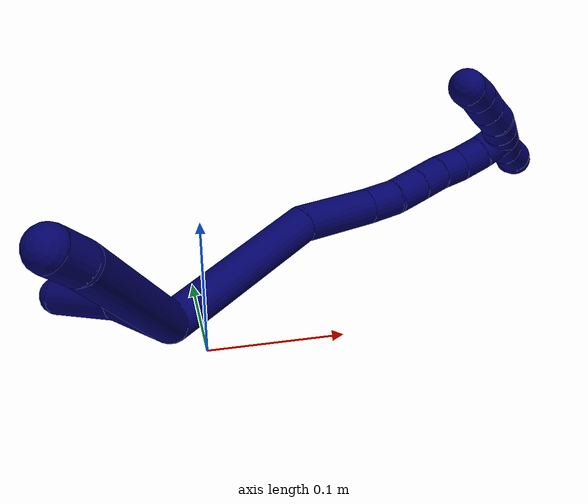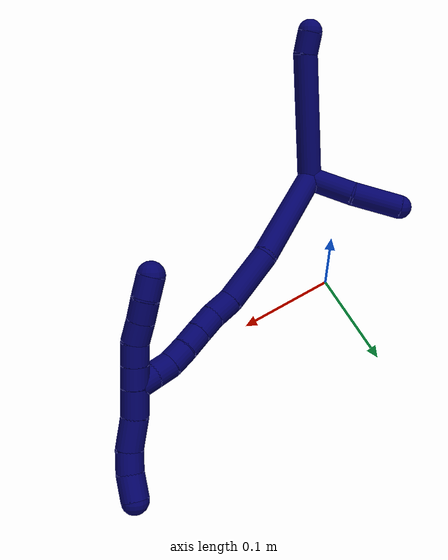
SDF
<sdf version="1.7">
 <world name="default">
  <model name="photoneo_s_sensor">
   <static>1</static>
   <pose>0 0 2 1.57079 1.57079 3.14159</pose>
   <link name="link">
    <inertial><mass>0.1</mass></inertial>
    <sensor name="sensor" type="depth">
     <update_rate>30</update_rate>
     <camera>
      <horizontal_fov>1.22</horizontal_fov>
      <image><width>1920</width><height>1200</height><format>B8G8R8</format></image>
      <clip><near>0.1</near><far>4</far></clip>
      <depth_camera><output>points</output></depth_camera>
     </camera>
     <plugin name="camera_plugin" filename="libgazebo_ros_depth_camera.so">
      <baseline>0.2</baseline>
      <alwaysOn>1</alwaysOn>
      <updateRate>0.0</updateRate>
      <cameraName>camera_ir</cameraName>
      <imageTopicName>/camera/color/image_raw</imageTopicName>
      <cameraInfoTopicName>/camera/color/camera_info</cameraInfoTopicName>
      <depthImageTopicName>/camera/depth/image_raw</depthImageTopicName>
      <depthImageCameraInfoTopicName>/camera/depth/camera_info</depthImageCameraInfoTopicName>
      <pointCloudTopicName>/camera/depth/points</pointCloudTopicName>
      <frameName>fr_optical</frameName>
      <pointCloudCutoff>0.1</pointCloudCutoff>
      <pointCloudCutoffMax>2.0</pointCloudCutoffMax>
      <distortionK1>0</distortionK1>
      <distortionK2>0</distortionK2>
      <distortionK3>0</distortionK3>
      <distortionT1>0</distortionT1>
      <distortionT2>0</distortionT2>
      <CxPrime>0</CxPrime>
      <Cx>0</Cx>
      <Cy>0</Cy>
      <focalLength>0</focalLength>
      <hackBaseline>0</hackBaseline>
     </plugin>
    </sensor>
   </link>
  </model>
  <model name="bin">
   <static>1</static>
   <link name="bottom">
    <collision name="collision-bottom">
     <pose>0 0 -0.01 0 -0 0</pose>
     <geometry><box><size>0.8 0.6 0.02</size></box></geometry>
     <surface>
      <friction><ode><mu>100</mu><mu2>100</mu2></ode></friction>
      <contact><collide_bitmask>65535</collide_bitmask></contact>
     </surface>
    </collision>
   </link>
   <link name="west_wall">
    <collision name="collision-west_wall">
     <pose>-0.41 0 0.1 0 -0 0</pose>
     <geometry><box><size>0.02 0.6 0.2</size></box></geometry>
     <surface>
      <friction><ode><mu>100</mu><mu2>100</mu2></ode></friction>
      <contact><collide_bitmask>65535</collide_bitmask></contact>
     </surface>
    </collision>
   </link>
   <link name="east_wall">
    <collision name="collision-east_wall">
     <pose>0.41 0 0.1 0 -0 0</pose>
     <geometry><box><size>0.02 0.6 0.2</size></box></geometry>
     <surface>
      <friction><ode><mu>100</mu><mu2>100</mu2></ode></friction>
      <contact><collide_bitmask>65535</collide_bitmask></contact>
     </surface>
    </collision>
   </link>
   <link name="south_wall">
    <collision name="collision-south_wall">
     <pose>0 -0.31 0.1 0 -0 0</pose>
     <geometry><box><size>0.8 0.02 0.2</size></box></geometry>
     <surface>
      <friction><ode><mu>100</mu><mu2>100</mu2></ode></friction>
      <contact><collide_bitmask>65535</collide_bitmask></contact>
     </surface>
    </collision>
   </link>
   <link name="north_wall">
    <collision name="collision-north_wall">
     <pose>0 0.31 0.1 0 -0 0</pose>
     <geometry><box><size>0.8 0.02 0.2</size></box></geometry>
     <surface>
      <friction><ode><mu>100</mu><mu2>100</mu2></ode></friction>
      <contact><collide_bitmask>65535</collide_bitmask></contact>
     </surface>
    </collision>
   </link>
  </model>
  <model name="7">
   <static>0</static>
   <link name="7">
    <collision name="collision-cylinder-e_1_2_8">
     <pose>0.003729 0.00787 0.06325 -0.123794 0.058442 -0.003623</pose>
     <geometry><cylinder><radius>0.0125</radius><length>0.127693</length></cylinder></geometry>
     <surface>
      <friction><ode><mu>1.16</mu><mu2>1.16</mu2><slip1>0</slip1><slip2>0</slip2></ode></friction>
      <contact><ode><kp>1e+06</kp><kd>1</kd><max_vel>0</max_vel><min_depth>0.001</min_depth></ode></contact>
     </surface>
    </collision>
    <visual name="visual-cylinder-e_1_2_8">
     <pose>0.003729 0.00787 0.06325 -0.123794 0.058442 -0.003623</pose>
     <geometry><cylinder><radius>0.0125</radius><length>0.127693</length></cylinder></geometry>
     <material><ambient>0.003922 0 0.403922 1</ambient></material>
    </visual>
    <collision name="collision-cylinder-e_2_8_6">
     <pose>0.005365 0.0171 0.13737 -0.124409 -0.188824 0.011796</pose>
     <geometry><cylinder><radius>0.0125</radius><length>0.022307</length></cylinder></geometry>
     <surface>
      <friction><ode><mu>1.16</mu><mu2>1.16</mu2><slip1>0</slip1><slip2>0</slip2></ode></friction>
      <contact><ode><kp>1e+06</kp><kd>1</kd><max_vel>0</max_vel><min_depth>0.001</min_depth></ode></contact>
     </surface>
    </collision>
    <visual name="visual-cylinder-e_2_8_6">
     <pose>0.005365 0.0171 0.13737 -0.124409 -0.188824 0.011796</pose>
     <geometry><cylinder><radius>0.0125</radius><length>0.022307</length></cylinder></geometry>
     <material><ambient>0.003922 0 0.403922 1</ambient></material>
    </visual>
    <collision name="collision-cylinder-e_1_2_9">
     <pose>-0.021893 0.006597 -0.007746 -2.43616 -1.13577 2.09495</pose>
     <geometry><cylinder><radius>0.0125</radius><length>0.048284</length></cylinder></geometry>
     <surface>
      <friction><ode><mu>1.16</mu><mu2>1.16</mu2><slip1>0</slip1><slip2>0</slip2></ode></friction>
      <contact><ode><kp>1e+06</kp><kd>1</kd><max_vel>0</max_vel><min_depth>0.001</min_depth></ode></contact>
     </surface>
    </collision>
    <visual name="visual-cylinder-e_1_2_9">
     <pose>-0.021893 0.006597 -0.007746 -2.43616 -1.13577 2.09495</pose>
     <geometry><cylinder><radius>0.0125</radius><length>0.048284</length></cylinder></geometry>
     <material><ambient>0.003922 0 0.403922 1</ambient></material>
    </visual>
    <collision name="collision-cylinder-e_2_9_5">
     <pose>-0.06864 0.014641 -0.02248 -2.9373 -1.29116 2.87109</pose>
     <geometry><cylinder><radius>0.0125</radius><length>0.051716</length></cylinder></geometry>
     <surface>
      <friction><ode><mu>1.16</mu><mu2>1.16</mu2><slip1>0</slip1><slip2>0</slip2></ode></friction>
      <contact><ode><kp>1e+06</kp><kd>1</kd><max_vel>0</max_vel><min_depth>0.001</min_depth></ode></contact>
     </surface>
    </collision>
    <visual name="visual-cylinder-e_2_9_5">
     <pose>-0.06864 0.014641 -0.02248 -2.9373 -1.29116 2.87109</pose>
     <geometry><cylinder><radius>0.0125</radius><length>0.051716</length></cylinder></geometry>
     <material><ambient>0.003922 0 0.403922 1</ambient></material>
    </visual>
    <collision name="collision-cylinder-e_1_2_10">
     <pose>0.027549 0.037768 -0.035484 -2.32503 0.488614 -1.04557</pose>
     <geometry><cylinder><radius>0.0125</radius><length>0.117381</length></cylinder></geometry>
     <surface>
      <friction><ode><mu>1.16</mu><mu2>1.16</mu2><slip1>0</slip1><slip2>0</slip2></ode></friction>
      <contact><ode><kp>1e+06</kp><kd>1</kd><max_vel>0</max_vel><min_depth>0.001</min_depth></ode></contact>
     </surface>
    </collision>
    <visual name="visual-cylinder-e_1_2_10">
     <pose>0.027549 0.037768 -0.035484 -2.32503 0.488614 -1.04557</pose>
     <geometry><cylinder><radius>0.0125</radius><length>0.117381</length></cylinder></geometry>
     <material><ambient>0.003922 0 0.403922 1</ambient></material>
    </visual>
    <collision name="collision-cylinder-e_2_10_11">
     <pose>0.072217 0.086094 -0.090362 -2.64307 0.659481 -1.86255</pose>
     <geometry><cylinder><radius>0.0125</radius><length>0.055879</length></cylinder></geometry>
     <surface>
      <friction><ode><mu>1.16</mu><mu2>1.16</mu2><slip1>0</slip1><slip2>0</slip2></ode></friction>
      <contact><ode><kp>1e+06</kp><kd>1</kd><max_vel>0</max_vel><min_depth>0.001</min_depth></ode></contact>
     </surface>
    </collision>
    <visual name="visual-cylinder-e_2_10_11">
     <pose>0.072217 0.086094 -0.090362 -2.64307 0.659481 -1.86255</pose>
     <geometry><cylinder><radius>0.0125</radius><length>0.055879</length></cylinder></geometry>
     <material><ambient>0.003922 0 0.403922 1</ambient></material>
    </visual>
    <collision name="collision-cylinder-e_3_11_12">
     <pose>0.097947 0.101644 -0.115969 -2.46468 0.82399 -1.78544</pose>
     <geometry><cylinder><radius>0.0125</radius><length>0.023468</length></cylinder></geometry>
     <surface>
      <friction><ode><mu>1.16</mu><mu2>1.16</mu2><slip1>0</slip1><slip2>0</slip2></ode></friction>
      <contact><ode><kp>1e+06</kp><kd>1</kd><max_vel>0</max_vel><min_depth>0.001</min_depth></ode></contact>
     </surface>
    </collision>
    <visual name="visual-cylinder-e_3_11_12">
     <pose>0.097947 0.101644 -0.115969 -2.46468 0.82399 -1.78544</pose>
     <geometry><cylinder><radius>0.0125</radius><length>0.023468</length></cylinder></geometry>
     <material><ambient>0.003922 0 0.403922 1</ambient></material>
    </visual>
    <collision name="collision-cylinder-e_4_12_13">
     <pose>0.113464 0.112826 -0.128465 -2.3638 0.664304 -1.39941</pose>
     <geometry><cylinder><radius>0.0125</radius><length>0.022402</length></cylinder></geometry>
     <surface>
      <friction><ode><mu>1.16</mu><mu2>1.16</mu2><slip1>0</slip1><slip2>0</slip2></ode></friction>
      <contact><ode><kp>1e+06</kp><kd>1</kd><max_vel>0</max_vel><min_depth>0.001</min_depth></ode></contact>
     </surface>
    </collision>
    <visual name="visual-cylinder-e_4_12_13">
     <pose>0.113464 0.112826 -0.128465 -2.3638 0.664304 -1.39941</pose>
     <geometry><cylinder><radius>0.0125</radius><length>0.022402</length></cylinder></geometry>
     <material><ambient>0.003922 0 0.403922 1</ambient></material>
    </visual>
    <collision name="collision-cylinder-e_5_13_14">
     <pose>0.12653 0.124737 -0.140548 -2.36278 0.647409 -1.37075</pose>
     <geometry><cylinder><radius>0.0125</radius><length>0.02043</length></cylinder></geometry>
     <surface>
      <friction><ode><mu>1.16</mu><mu2>1.16</mu2><slip1>0</slip1><slip2>0</slip2></ode></friction>
      <contact><ode><kp>1e+06</kp><kd>1</kd><max_vel>0</max_vel><min_depth>0.001</min_depth></ode></contact>
     </surface>
    </collision>
    <visual name="visual-cylinder-e_5_13_14">
     <pose>0.12653 0.124737 -0.140548 -2.36278 0.647409 -1.37075</pose>
     <geometry><cylinder><radius>0.0125</radius><length>0.02043</length></cylinder></geometry>
     <material><ambient>0.003922 0 0.403922 1</ambient></material>
    </visual>
    <collision name="collision-cylinder-e_6_14_15">
     <pose>0.139367 0.135267 -0.152151 -2.44989 0.725023 -1.622</pose>
     <geometry><cylinder><radius>0.0125</radius><length>0.020135</length></cylinder></geometry>
     <surface>
      <friction><ode><mu>1.16</mu><mu2>1.16</mu2><slip1>0</slip1><slip2>0</slip2></ode></friction>
      <contact><ode><kp>1e+06</kp><kd>1</kd><max_vel>0</max_vel><min_depth>0.001</min_depth></ode></contact>
     </surface>
    </collision>
    <visual name="visual-cylinder-e_6_14_15">
     <pose>0.139367 0.135267 -0.152151 -2.44989 0.725023 -1.622</pose>
     <geometry><cylinder><radius>0.0125</radius><length>0.020135</length></cylinder></geometry>
     <material><ambient>0.003922 0 0.403922 1</ambient></material>
    </visual>
    <collision name="collision-cylinder-e_7_15_16">
     <pose>0.153639 0.145744 -0.161264 -2.09925 0.857977 -1.34545</pose>
     <geometry><cylinder><radius>0.0125</radius><length>0.020079</length></cylinder></geometry>
     <surface>
      <friction><ode><mu>1.16</mu><mu2>1.16</mu2><slip1>0</slip1><slip2>0</slip2></ode></friction>
      <contact><ode><kp>1e+06</kp><kd>1</kd><max_vel>0</max_vel><min_depth>0.001</min_depth></ode></contact>
     </surface>
    </collision>
    <visual name="visual-cylinder-e_7_15_16">
     <pose>0.153639 0.145744 -0.161264 -2.09925 0.857977 -1.34545</pose>
     <geometry><cylinder><radius>0.0125</radius><length>0.020079</length></cylinder></geometry>
     <material><ambient>0.003922 0 0.403922 1</ambient></material>
    </visual>
    <collision name="collision-cylinder-e_8_16_1">
     <pose>0.168442 0.15798 -0.167259 -1.95886 0.79336 -1.11543</pose>
     <geometry><cylinder><radius>0.0125</radius><length>0.020227</length></cylinder></geometry>
     <surface>
      <friction><ode><mu>1.16</mu><mu2>1.16</mu2><slip1>0</slip1><slip2>0</slip2></ode></friction>
      <contact><ode><kp>1e+06</kp><kd>1</kd><max_vel>0</max_vel><min_depth>0.001</min_depth></ode></contact>
     </surface>
    </collision>
    <visual name="visual-cylinder-e_8_16_1">
     <pose>0.168442 0.15798 -0.167259 -1.95886 0.79336 -1.11543</pose>
     <geometry><cylinder><radius>0.0125</radius><length>0.020227</length></cylinder></geometry>
     <material><ambient>0.003922 0 0.403922 1</ambient></material>
    </visual>
    <collision name="collision-cylinder-e_1_1_17">
     <pose>0.175964 0.164165 -0.183087 3.11254 0.023889 1.37623</pose>
     <geometry><cylinder><radius>0.0125</radius><length>0.026305</length></cylinder></geometry>
     <surface>
      <friction><ode><mu>1.16</mu><mu2>1.16</mu2><slip1>0</slip1><slip2>0</slip2></ode></friction>
      <contact><ode><kp>1e+06</kp><kd>1</kd><max_vel>0</max_vel><min_depth>0.001</min_depth></ode></contact>
     </surface>
    </collision>
    <visual name="visual-cylinder-e_1_1_17">
     <pose>0.175964 0.164165 -0.183087 3.11254 0.023889 1.37623</pose>
     <geometry><cylinder><radius>0.0125</radius><length>0.026305</length></cylinder></geometry>
     <material><ambient>0.003922 0 0.403922 1</ambient></material>
    </visual>
    <collision name="collision-cylinder-e_2_17_18">
     <pose>0.17885 0.164686 -0.210753 -3.0795 0.174961 -2.4609</pose>
     <geometry><cylinder><radius>0.0125</radius><length>0.029554</length></cylinder></geometry>
     <surface>
      <friction><ode><mu>1.16</mu><mu2>1.16</mu2><slip1>0</slip1><slip2>0</slip2></ode></friction>
      <contact><ode><kp>1e+06</kp><kd>1</kd><max_vel>0</max_vel><min_depth>0.001</min_depth></ode></contact>
     </surface>
    </collision>
    <visual name="visual-cylinder-e_2_17_18">
     <pose>0.17885 0.164686 -0.210753 -3.0795 0.174961 -2.4609</pose>
     <geometry><cylinder><radius>0.0125</radius><length>0.029554</length></cylinder></geometry>
     <material><ambient>0.003922 0 0.403922 1</ambient></material>
    </visual>
    <collision name="collision-cylinder-e_3_18_19">
     <pose>0.181263 0.167091 -0.235318 -2.99309 -0.015675 0.209949</pose>
     <geometry><cylinder><radius>0.0125</radius><length>0.020309</length></cylinder></geometry>
     <surface>
      <friction><ode><mu>1.16</mu><mu2>1.16</mu2><slip1>0</slip1><slip2>0</slip2></ode></friction>
      <contact><ode><kp>1e+06</kp><kd>1</kd><max_vel>0</max_vel><min_depth>0.001</min_depth></ode></contact>
     </surface>
    </collision>
    <visual name="visual-cylinder-e_3_18_19">
     <pose>0.181263 0.167091 -0.235318 -2.99309 -0.015675 0.209949</pose>
     <geometry><cylinder><radius>0.0125</radius><length>0.020309</length></cylinder></geometry>
     <material><ambient>0.003922 0 0.403922 1</ambient></material>
    </visual>
    <collision name="collision-cylinder-e_4_19_4">
     <pose>0.178929 0.171888 -0.256603 -2.85657 -0.183601 1.14089</pose>
     <geometry><cylinder><radius>0.0125</radius><length>0.023832</length></cylinder></geometry>
     <surface>
      <friction><ode><mu>1.16</mu><mu2>1.16</mu2><slip1>0</slip1><slip2>0</slip2></ode></friction>
      <contact><ode><kp>1e+06</kp><kd>1</kd><max_vel>0</max_vel><min_depth>0.001</min_depth></ode></contact>
     </surface>
    </collision>
    <visual name="visual-cylinder-e_4_19_4">
     <pose>0.178929 0.171888 -0.256603 -2.85657 -0.183601 1.14089</pose>
     <geometry><cylinder><radius>0.0125</radius><length>0.023832</length></cylinder></geometry>
     <material><ambient>0.003922 0 0.403922 1</ambient></material>
    </visual>
    <collision name="collision-cylinder-e_1_1_20">
     <pose>0.175484 0.164668 -0.159946 -0.012182 -0.01662 0.000101</pose>
     <geometry><cylinder><radius>0.0125</radius><length>0.02</length></cylinder></geometry>
     <surface>
      <friction><ode><mu>1.16</mu><mu2>1.16</mu2><slip1>0</slip1><slip2>0</slip2></ode></friction>
      <contact><ode><kp>1e+06</kp><kd>1</kd><max_vel>0</max_vel><min_depth>0.001</min_depth></ode></contact>
     </surface>
    </collision>
    <visual name="visual-cylinder-e_1_1_20">
     <pose>0.175484 0.164668 -0.159946 -0.012182 -0.01662 0.000101</pose>
     <geometry><cylinder><radius>0.0125</radius><length>0.02</length></cylinder></geometry>
     <material><ambient>0.003922 0 0.403922 1</ambient></material>
    </visual>
    <collision name="collision-cylinder-e_2_20_21">
     <pose>0.17494 0.165171 -0.139962 -0.038109 -0.037721 0.000719</pose>
     <geometry><cylinder><radius>0.0125</radius><length>0.02</length></cylinder></geometry>
     <surface>
      <friction><ode><mu>1.16</mu><mu2>1.16</mu2><slip1>0</slip1><slip2>0</slip2></ode></friction>
      <contact><ode><kp>1e+06</kp><kd>1</kd><max_vel>0</max_vel><min_depth>0.001</min_depth></ode></contact>
     </surface>
    </collision>
    <visual name="visual-cylinder-e_2_20_21">
     <pose>0.17494 0.165171 -0.139962 -0.038109 -0.037721 0.000719</pose>
     <geometry><cylinder><radius>0.0125</radius><length>0.02</length></cylinder></geometry>
     <material><ambient>0.003922 0 0.403922 1</ambient></material>
    </visual>
    <collision name="collision-cylinder-e_3_21_22">
     <pose>0.171907 0.166523 -0.120385 -0.100968 -0.268887 0.013668</pose>
     <geometry><cylinder><radius>0.0125</radius><length>0.02</length></cylinder></geometry>
     <surface>
      <friction><ode><mu>1.16</mu><mu2>1.16</mu2><slip1>0</slip1><slip2>0</slip2></ode></friction>
      <contact><ode><kp>1e+06</kp><kd>1</kd><max_vel>0</max_vel><min_depth>0.001</min_depth></ode></contact>
     </surface>
    </collision>
    <visual name="visual-cylinder-e_3_21_22">
     <pose>0.171907 0.166523 -0.120385 -0.100968 -0.268887 0.013668</pose>
     <geometry><cylinder><radius>0.0125</radius><length>0.02</length></cylinder></geometry>
     <material><ambient>0.003922 0 0.403922 1</ambient></material>
    </visual>
    <collision name="collision-cylinder-e_4_22_23">
     <pose>0.167033 0.16882 -0.101133 -0.136306 -0.22353 0.015321</pose>
     <geometry><cylinder><radius>0.0125</radius><length>0.02</length></cylinder></geometry>
     <surface>
      <friction><ode><mu>1.16</mu><mu2>1.16</mu2><slip1>0</slip1><slip2>0</slip2></ode></friction>
      <contact><ode><kp>1e+06</kp><kd>1</kd><max_vel>0</max_vel><min_depth>0.001</min_depth></ode></contact>
     </surface>
    </collision>
    <visual name="visual-cylinder-e_4_22_23">
     <pose>0.167033 0.16882 -0.101133 -0.136306 -0.22353 0.015321</pose>
     <geometry><cylinder><radius>0.0125</radius><length>0.02</length></cylinder></geometry>
     <material><ambient>0.003922 0 0.403922 1</ambient></material>
    </visual>
    <collision name="collision-cylinder-e_5_23_3">
     <pose>0.162359 0.16975 -0.081787 0.040769 -0.248333 -0.005089</pose>
     <geometry><cylinder><radius>0.0125</radius><length>0.02</length></cylinder></geometry>
     <surface>
      <friction><ode><mu>1.16</mu><mu2>1.16</mu2><slip1>0</slip1><slip2>0</slip2></ode></friction>
      <contact><ode><kp>1e+06</kp><kd>1</kd><max_vel>0</max_vel><min_depth>0.001</min_depth></ode></contact>
     </surface>
    </collision>
    <visual name="visual-cylinder-e_5_23_3">
     <pose>0.162359 0.16975 -0.081787 0.040769 -0.248333 -0.005089</pose>
     <geometry><cylinder><radius>0.0125</radius><length>0.02</length></cylinder></geometry>
     <material><ambient>0.003922 0 0.403922 1</ambient></material>
    </visual>
    <collision name="collision-sphere-3">
     <pose>0.159901 0.169355 -0.072102 0 -0 0</pose>
     <geometry><sphere><radius>0.0125</radius></sphere></geometry>
     <surface>
      <friction><ode><mu>1.16</mu><mu2>1.16</mu2><slip1>0</slip1><slip2>0</slip2></ode></friction>
      <contact><ode><kp>1e+06</kp><kd>1</kd><max_vel>0</max_vel><min_depth>0.001</min_depth></ode></contact>
     </surface>
    </collision>
    <visual name="visual-sphere-3">
     <pose>0.159901 0.169355 -0.072102 0 -0 0</pose>
     <geometry><sphere><radius>0.0125</radius></sphere></geometry>
     <material><ambient>0.003922 0 0.403922 1</ambient></material>
    </visual>
    <collision name="collision-sphere-23">
     <pose>0.164816 0.170145 -0.091472 0 -0 0</pose>
     <geometry><sphere><radius>0.0125</radius></sphere></geometry>
     <surface>
      <friction><ode><mu>1.16</mu><mu2>1.16</mu2><slip1>0</slip1><slip2>0</slip2></ode></friction>
      <contact><ode><kp>1e+06</kp><kd>1</kd><max_vel>0</max_vel><min_depth>0.001</min_depth></ode></contact>
     </surface>
    </collision>
    <visual name="visual-sphere-23">
     <pose>0.164816 0.170145 -0.091472 0 -0 0</pose>
     <geometry><sphere><radius>0.0125</radius></sphere></geometry>
     <material><ambient>0.003922 0 0.403922 1</ambient></material>
    </visual>
    <collision name="collision-sphere-22">
     <pose>0.16925 0.167495 -0.110793 0 -0 0</pose>
     <geometry><sphere><radius>0.0125</radius></sphere></geometry>
     <surface>
      <friction><ode><mu>1.16</mu><mu2>1.16</mu2><slip1>0</slip1><slip2>0</slip2></ode></friction>
      <contact><ode><kp>1e+06</kp><kd>1</kd><max_vel>0</max_vel><min_depth>0.001</min_depth></ode></contact>
     </surface>
    </collision>
    <visual name="visual-sphere-22">
     <pose>0.16925 0.167495 -0.110793 0 -0 0</pose>
     <geometry><sphere><radius>0.0125</radius></sphere></geometry>
     <material><ambient>0.003922 0 0.403922 1</ambient></material>
    </visual>
    <collision name="collision-sphere-21">
     <pose>0.174563 0.165552 -0.129977 0 -0 0</pose>
     <geometry><sphere><radius>0.0125</radius></sphere></geometry>
     <surface>
      <friction><ode><mu>1.16</mu><mu2>1.16</mu2><slip1>0</slip1><slip2>0</slip2></ode></friction>
      <contact><ode><kp>1e+06</kp><kd>1</kd><max_vel>0</max_vel><min_depth>0.001</min_depth></ode></contact>
     </surface>
    </collision>
    <visual name="visual-sphere-21">
     <pose>0.174563 0.165552 -0.129977 0 -0 0</pose>
     <geometry><sphere><radius>0.0125</radius></sphere></geometry>
     <material><ambient>0.003922 0 0.403922 1</ambient></material>
    </visual>
    <collision name="collision-sphere-20">
     <pose>0.175317 0.16479 -0.149948 0 -0 0</pose>
     <geometry><sphere><radius>0.0125</radius></sphere></geometry>
     <surface>
      <friction><ode><mu>1.16</mu><mu2>1.16</mu2><slip1>0</slip1><slip2>0</slip2></ode></friction>
      <contact><ode><kp>1e+06</kp><kd>1</kd><max_vel>0</max_vel><min_depth>0.001</min_depth></ode></contact>
     </surface>
    </collision>
    <visual name="visual-sphere-20">
     <pose>0.175317 0.16479 -0.149948 0 -0 0</pose>
     <geometry><sphere><radius>0.0125</radius></sphere></geometry>
     <material><ambient>0.003922 0 0.403922 1</ambient></material>
    </visual>
    <collision name="collision-sphere-4">
     <pose>0.176753 0.175182 -0.267846 0 -0 0</pose>
     <geometry><sphere><radius>0.0125</radius></sphere></geometry>
     <surface>
      <friction><ode><mu>1.16</mu><mu2>1.16</mu2><slip1>0</slip1><slip2>0</slip2></ode></friction>
      <contact><ode><kp>1e+06</kp><kd>1</kd><max_vel>0</max_vel><min_depth>0.001</min_depth></ode></contact>
     </surface>
    </collision>
    <visual name="visual-sphere-4">
     <pose>0.176753 0.175182 -0.267846 0 -0 0</pose>
     <geometry><sphere><radius>0.0125</radius></sphere></geometry>
     <material><ambient>0.003922 0 0.403922 1</ambient></material>
    </visual>
    <collision name="collision-sphere-10">
     <pose>0.055099 0.075537 -0.070969 0 -0 0</pose>
     <geometry><sphere><radius>0.0125</radius></sphere></geometry>
     <surface>
      <friction><ode><mu>1.16</mu><mu2>1.16</mu2><slip1>0</slip1><slip2>0</slip2></ode></friction>
      <contact><ode><kp>1e+06</kp><kd>1</kd><max_vel>0</max_vel><min_depth>0.001</min_depth></ode></contact>
     </surface>
    </collision>
    <visual name="visual-sphere-10">
     <pose>0.055099 0.075537 -0.070969 0 -0 0</pose>
     <geometry><sphere><radius>0.0125</radius></sphere></geometry>
     <material><ambient>0.003922 0 0.403922 1</ambient></material>
    </visual>
    <collision name="collision-sphere-5">
     <pose>-0.093494 0.016089 -0.029469 0 -0 0</pose>
     <geometry><sphere><radius>0.0125</radius></sphere></geometry>
     <surface>
      <friction><ode><mu>1.16</mu><mu2>1.16</mu2><slip1>0</slip1><slip2>0</slip2></ode></friction>
      <contact><ode><kp>1e+06</kp><kd>1</kd><max_vel>0</max_vel><min_depth>0.001</min_depth></ode></contact>
     </surface>
    </collision>
    <visual name="visual-sphere-5">
     <pose>-0.093494 0.016089 -0.029469 0 -0 0</pose>
     <geometry><sphere><radius>0.0125</radius></sphere></geometry>
     <material><ambient>0.003922 0 0.403922 1</ambient></material>
    </visual>
    <collision name="collision-sphere-6">
     <pose>0.003271 0.018459 0.148241 0 -0 0</pose>
     <geometry><sphere><radius>0.0125</radius></sphere></geometry>
     <surface>
      <friction><ode><mu>1.16</mu><mu2>1.16</mu2><slip1>0</slip1><slip2>0</slip2></ode></friction>
      <contact><ode><kp>1e+06</kp><kd>1</kd><max_vel>0</max_vel><min_depth>0.001</min_depth></ode></contact>
     </surface>
    </collision>
    <visual name="visual-sphere-6">
     <pose>0.003271 0.018459 0.148241 0 -0 0</pose>
     <geometry><sphere><radius>0.0125</radius></sphere></geometry>
     <material><ambient>0.003922 0 0.403922 1</ambient></material>
    </visual>
    <collision name="collision-sphere-9">
     <pose>-0.043787 0.013193 -0.015492 0 -0 0</pose>
     <geometry><sphere><radius>0.0125</radius></sphere></geometry>
     <surface>
      <friction><ode><mu>1.16</mu><mu2>1.16</mu2><slip1>0</slip1><slip2>0</slip2></ode></friction>
      <contact><ode><kp>1e+06</kp><kd>1</kd><max_vel>0</max_vel><min_depth>0.001</min_depth></ode></contact>
     </surface>
    </collision>
    <visual name="visual-sphere-9">
     <pose>-0.043787 0.013193 -0.015492 0 -0 0</pose>
     <geometry><sphere><radius>0.0125</radius></sphere></geometry>
     <material><ambient>0.003922 0 0.403922 1</ambient></material>
    </visual>
    <collision name="collision-sphere-2">
     <geometry><sphere><radius>0.0125</radius></sphere></geometry>
     <surface>
      <friction><ode><mu>1.16</mu><mu2>1.16</mu2><slip1>0</slip1><slip2>0</slip2></ode></friction>
      <contact><ode><kp>1e+06</kp><kd>1</kd><max_vel>0</max_vel><min_depth>0.001</min_depth></ode></contact>
     </surface>
    </collision>
    <visual name="visual-sphere-2">
     <geometry><sphere><radius>0.0125</radius></sphere></geometry>
     <material><ambient>0.003922 0 0.403922 1</ambient></material>
    </visual>
    <collision name="collision-sphere-19">
     <pose>0.181104 0.168593 -0.24536 0 -0 0</pose>
     <geometry><sphere><radius>0.0125</radius></sphere></geometry>
     <surface>
      <friction><ode><mu>1.16</mu><mu2>1.16</mu2><slip1>0</slip1><slip2>0</slip2></ode></friction>
      <contact><ode><kp>1e+06</kp><kd>1</kd><max_vel>0</max_vel><min_depth>0.001</min_depth></ode></contact>
     </surface>
    </collision>
    <visual name="visual-sphere-19">
     <pose>0.181104 0.168593 -0.24536 0 -0 0</pose>
     <geometry><sphere><radius>0.0125</radius></sphere></geometry>
     <material><ambient>0.003922 0 0.403922 1</ambient></material>
    </visual>
    <collision name="collision-sphere-8">
     <pose>0.007458 0.01574 0.1265 0 -0 0</pose>
     <geometry><sphere><radius>0.0125</radius></sphere></geometry>
     <surface>
      <friction><ode><mu>1.16</mu><mu2>1.16</mu2><slip1>0</slip1><slip2>0</slip2></ode></friction>
      <contact><ode><kp>1e+06</kp><kd>1</kd><max_vel>0</max_vel><min_depth>0.001</min_depth></ode></contact>
     </surface>
    </collision>
    <visual name="visual-sphere-8">
     <pose>0.007458 0.01574 0.1265 0 -0 0</pose>
     <geometry><sphere><radius>0.0125</radius></sphere></geometry>
     <material><ambient>0.003922 0 0.403922 1</ambient></material>
    </visual>
    <collision name="collision-sphere-11">
     <pose>0.089336 0.096652 -0.109756 0 -0 0</pose>
     <geometry><sphere><radius>0.0125</radius></sphere></geometry>
     <surface>
      <friction><ode><mu>1.16</mu><mu2>1.16</mu2><slip1>0</slip1><slip2>0</slip2></ode></friction>
      <contact><ode><kp>1e+06</kp><kd>1</kd><max_vel>0</max_vel><min_depth>0.001</min_depth></ode></contact>
     </surface>
    </collision>
    <visual name="visual-sphere-11">
     <pose>0.089336 0.096652 -0.109756 0 -0 0</pose>
     <geometry><sphere><radius>0.0125</radius></sphere></geometry>
     <material><ambient>0.003922 0 0.403922 1</ambient></material>
    </visual>
    <collision name="collision-sphere-12">
     <pose>0.106558 0.106637 -0.122182 0 -0 0</pose>
     <geometry><sphere><radius>0.0125</radius></sphere></geometry>
     <surface>
      <friction><ode><mu>1.16</mu><mu2>1.16</mu2><slip1>0</slip1><slip2>0</slip2></ode></friction>
      <contact><ode><kp>1e+06</kp><kd>1</kd><max_vel>0</max_vel><min_depth>0.001</min_depth></ode></contact>
     </surface>
    </collision>
    <visual name="visual-sphere-12">
     <pose>0.106558 0.106637 -0.122182 0 -0 0</pose>
     <geometry><sphere><radius>0.0125</radius></sphere></geometry>
     <material><ambient>0.003922 0 0.403922 1</ambient></material>
    </visual>
    <collision name="collision-sphere-13">
     <pose>0.120369 0.119014 -0.134749 0 -0 0</pose>
     <geometry><sphere><radius>0.0125</radius></sphere></geometry>
     <surface>
      <friction><ode><mu>1.16</mu><mu2>1.16</mu2><slip1>0</slip1><slip2>0</slip2></ode></friction>
      <contact><ode><kp>1e+06</kp><kd>1</kd><max_vel>0</max_vel><min_depth>0.001</min_depth></ode></contact>
     </surface>
    </collision>
    <visual name="visual-sphere-13">
     <pose>0.120369 0.119014 -0.134749 0 -0 0</pose>
     <geometry><sphere><radius>0.0125</radius></sphere></geometry>
     <material><ambient>0.003922 0 0.403922 1</ambient></material>
    </visual>
    <collision name="collision-sphere-14">
     <pose>0.132691 0.130461 -0.146347 0 -0 0</pose>
     <geometry><sphere><radius>0.0125</radius></sphere></geometry>
     <surface>
      <friction><ode><mu>1.16</mu><mu2>1.16</mu2><slip1>0</slip1><slip2>0</slip2></ode></friction>
      <contact><ode><kp>1e+06</kp><kd>1</kd><max_vel>0</max_vel><min_depth>0.001</min_depth></ode></contact>
     </surface>
    </collision>
    <visual name="visual-sphere-14">
     <pose>0.132691 0.130461 -0.146347 0 -0 0</pose>
     <geometry><sphere><radius>0.0125</radius></sphere></geometry>
     <material><ambient>0.003922 0 0.403922 1</ambient></material>
    </visual>
    <collision name="collision-sphere-15">
     <pose>0.146043 0.140074 -0.157954 0 -0 0</pose>
     <geometry><sphere><radius>0.0125</radius></sphere></geometry>
     <surface>
      <friction><ode><mu>1.16</mu><mu2>1.16</mu2><slip1>0</slip1><slip2>0</slip2></ode></friction>
      <contact><ode><kp>1e+06</kp><kd>1</kd><max_vel>0</max_vel><min_depth>0.001</min_depth></ode></contact>
     </surface>
    </collision>
    <visual name="visual-sphere-15">
     <pose>0.146043 0.140074 -0.157954 0 -0 0</pose>
     <geometry><sphere><radius>0.0125</radius></sphere></geometry>
     <material><ambient>0.003922 0 0.403922 1</ambient></material>
    </visual>
    <collision name="collision-sphere-16">
     <pose>0.161234 0.151414 -0.164575 0 -0 0</pose>
     <geometry><sphere><radius>0.0125</radius></sphere></geometry>
     <surface>
      <friction><ode><mu>1.16</mu><mu2>1.16</mu2><slip1>0</slip1><slip2>0</slip2></ode></friction>
      <contact><ode><kp>1e+06</kp><kd>1</kd><max_vel>0</max_vel><min_depth>0.001</min_depth></ode></contact>
     </surface>
    </collision>
    <visual name="visual-sphere-16">
     <pose>0.161234 0.151414 -0.164575 0 -0 0</pose>
     <geometry><sphere><radius>0.0125</radius></sphere></geometry>
     <material><ambient>0.003922 0 0.403922 1</ambient></material>
    </visual>
    <collision name="collision-sphere-1">
     <pose>0.17565 0.164547 -0.169944 0 -0 0</pose>
     <geometry><sphere><radius>0.0125</radius></sphere></geometry>
     <surface>
      <friction><ode><mu>1.16</mu><mu2>1.16</mu2><slip1>0</slip1><slip2>0</slip2></ode></friction>
      <contact><ode><kp>1e+06</kp><kd>1</kd><max_vel>0</max_vel><min_depth>0.001</min_depth></ode></contact>
     </surface>
    </collision>
    <visual name="visual-sphere-1">
     <pose>0.17565 0.164547 -0.169944 0 -0 0</pose>
     <geometry><sphere><radius>0.0125</radius></sphere></geometry>
     <material><ambient>0.003922 0 0.403922 1</ambient></material>
    </visual>
    <collision name="collision-sphere-18">
     <pose>0.181422 0.165589 -0.225276 0 -0 0</pose>
     <geometry><sphere><radius>0.0125</radius></sphere></geometry>
     <surface>
      <friction><ode><mu>1.16</mu><mu2>1.16</mu2><slip1>0</slip1><slip2>0</slip2></ode></friction>
      <contact><ode><kp>1e+06</kp><kd>1</kd><max_vel>0</max_vel><min_depth>0.001</min_depth></ode></contact>
     </surface>
    </collision>
    <visual name="visual-sphere-18">
     <pose>0.181422 0.165589 -0.225276 0 -0 0</pose>
     <geometry><sphere><radius>0.0125</radius></sphere></geometry>
     <material><ambient>0.003922 0 0.403922 1</ambient></material>
    </visual>
    <collision name="collision-sphere-17">
     <pose>0.176278 0.163783 -0.19623 0 -0 0</pose>
     <geometry><sphere><radius>0.0125</radius></sphere></geometry>
     <surface>
      <friction><ode><mu>1.16</mu><mu2>1.16</mu2><slip1>0</slip1><slip2>0</slip2></ode></friction>
      <contact><ode><kp>1e+06</kp><kd>1</kd><max_vel>0</max_vel><min_depth>0.001</min_depth></ode></contact>
     </surface>
    </collision>
    <visual name="visual-sphere-17">
     <pose>0.176278 0.163783 -0.19623 0 -0 0</pose>
     <geometry><sphere><radius>0.0125</radius></sphere></geometry>
     <material><ambient>0.003922 0 0.403922 1</ambient></material>
    </visual>
    <inertial>
     <pose>0.073168 0.081849 -0.069026 0 -0 0</pose>
     <mass>0.75</mass>
     <inertia>
      <ixx>0.000127</ixx>
      <ixy>0</ixy>
      <ixz>0</ixz>
      <iyy>0.000114</iyy>
      <iyz>0</iyz>
      <izz>-0.000201</izz>
     </inertia>
    </inertial>
   </link>
   <pose>-0.028059 -0.083103 0.07503 0.950721 -0.090715 -0.477435</pose>
  </model>
 </world>
</sdf>
